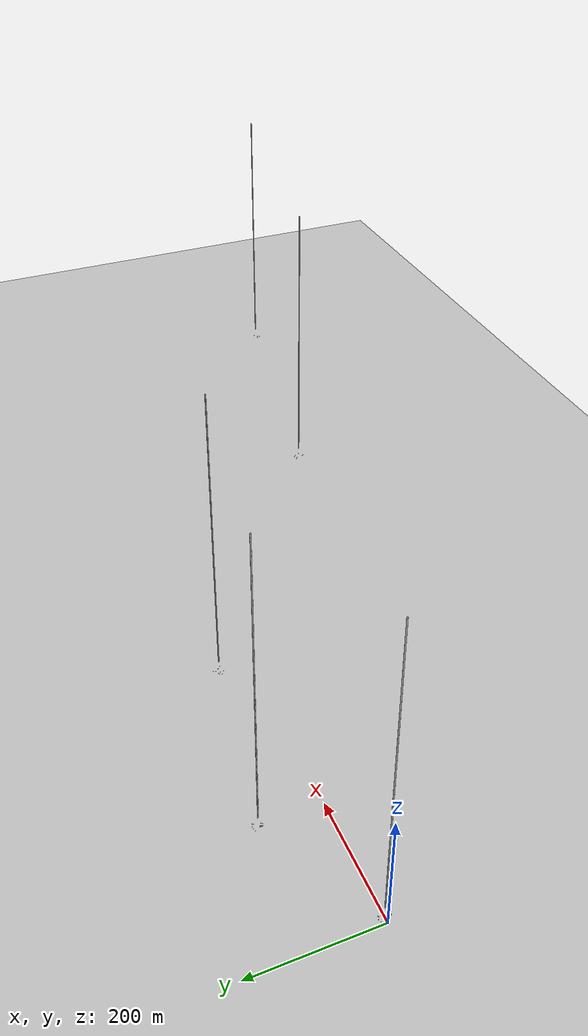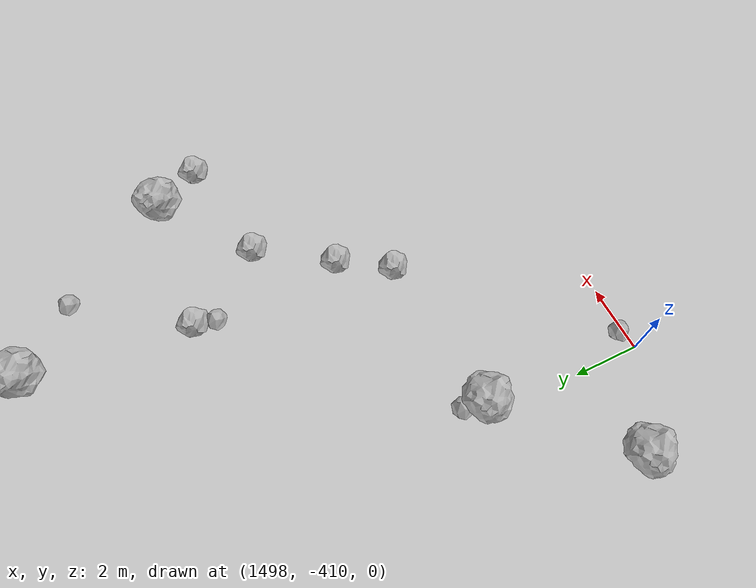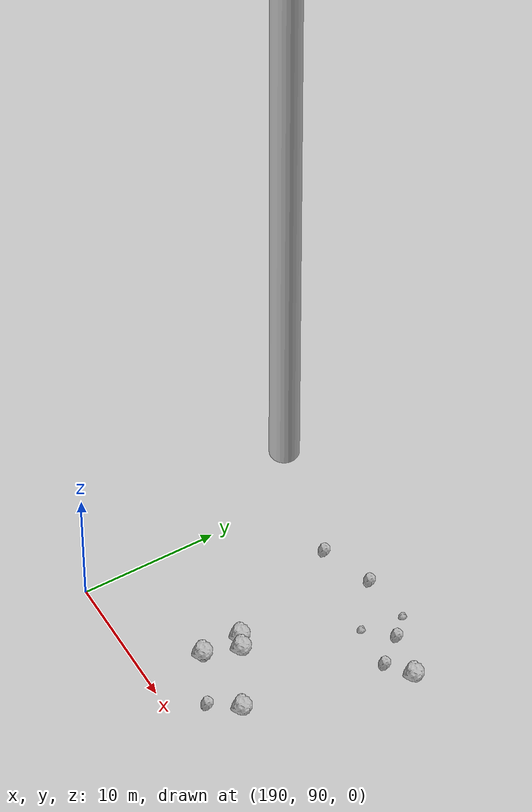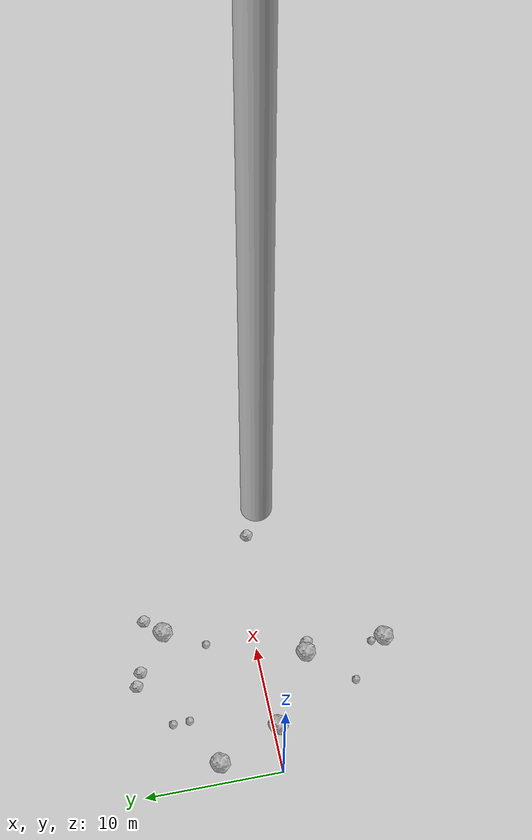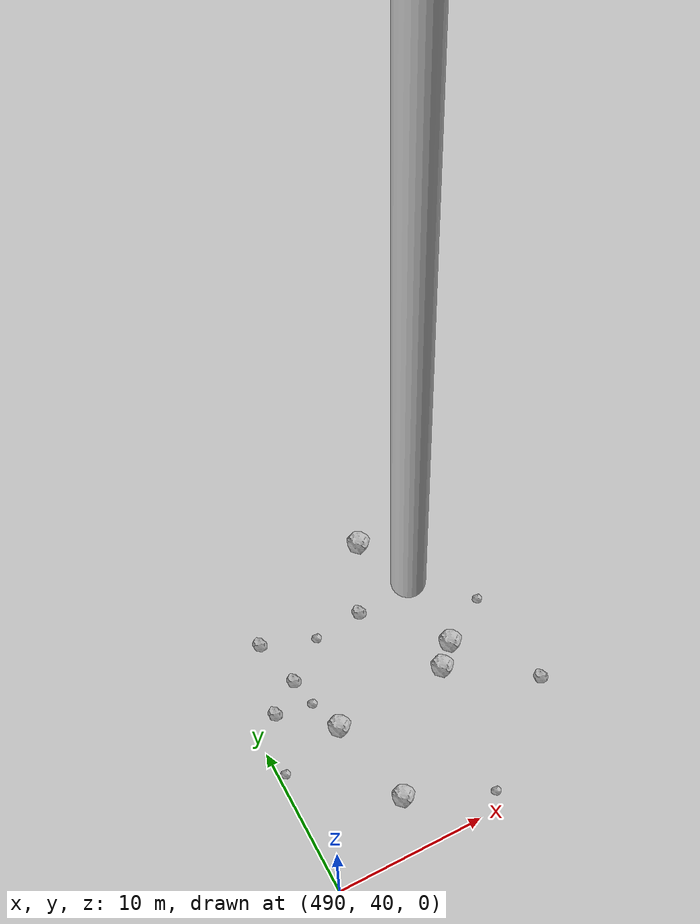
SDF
<?xml version="1.0" ?>
<sdf version="1.6">
  <world name="default">

    <include>
      <uri>model://custom_ground</uri>
    </include>

    <include>
      <uri>model://sun</uri>
    </include>

    <spherical_coordinates>
      <surface_model>EARTH_WGS84</surface_model>
      <latitude_deg>38.161479</latitude_deg>
      <longitude_deg>-122.454630</longitude_deg>
      <elevation>488.0</elevation>
      <heading_deg>90</heading_deg>
    </spherical_coordinates>

    <model name="rock1_0_0">
      <include>
        <uri>model://rock1</uri>
        <pose>12.582224413489527 6.631831437576466 0.5 0 0 0</pose>
      </include>
    </model>
    <model name="rock1_0_1">
      <include>
        <uri>model://rock1</uri>
        <pose>3.557448756831192 -0.2908031784061542 0.5 0 0 0</pose>
      </include>
    </model>
    <model name="rock1_0_2">
      <include>
        <uri>model://rock1</uri>
        <pose>8.898274807877101 -3.4960112588302428 0.5 0 0 0</pose>
      </include>
    </model>
    <model name="rock1_0_3">
      <include>
        <uri>model://rock1</uri>
        <pose>1.4691217928036093 4.355899784550063 0.5 0 0 0</pose>
      </include>
    </model>
    <model name="rock1_0_4">
      <include>
        <uri>model://rock1</uri>
        <pose>9.071037221916152 -9.471505252102952 0.5 0 0 0</pose>
      </include>
    </model>
    <model name="rock2_0_0">
      <include>
        <uri>model://rock2</uri>
        <pose>9.72652628888455 -3.7286553341679607 0.3 0 0 0</pose>
      </include>
    </model>
    <model name="rock2_0_1">
      <include>
        <uri>model://rock2</uri>
        <pose>8.599433305358854 9.242917827625885 0.3 0 0 0</pose>
      </include>
    </model>
    <model name="rock2_0_2">
      <include>
        <uri>model://rock2</uri>
        <pose>9.667864641921192 8.785490803290795 0.3 0 0 0</pose>
      </include>
    </model>
    <model name="rock2_0_3">
      <include>
        <uri>model://rock2</uri>
        <pose>13.80684304371017 7.876562991882114 0.3 0 0 0</pose>
      </include>
    </model>
    <model name="rock2_0_4">
      <include>
        <uri>model://rock2</uri>
        <pose>19.65813018475752 -1.1235590712246069 0.3 0 0 0</pose>
      </include>
    </model>
    <model name="rock3_0_0">
      <include>
        <uri>model://rock3</uri>
        <pose>8.911815016407846 -8.537455601026085 0.2 0 0 0</pose>
      </include>
    </model>
    <model name="rock3_0_1">
      <include>
        <uri>model://rock3</uri>
        <pose>5.135994218117599 7.101967131031131 0.2 0 0 0</pose>
      </include>
    </model>
    <model name="rock3_0_2">
      <include>
        <uri>model://rock3</uri>
        <pose>6.040533630499249 -6.686611478176667 0.2 0 0 0</pose>
      </include>
    </model>
    <model name="rock3_0_3">
      <include>
        <uri>model://rock3</uri>
        <pose>11.028570421657042 3.6067190401201916 0.2 0 0 0</pose>
      </include>
    </model>
    <model name="rock3_0_4">
      <include>
        <uri>model://rock3</uri>
        <pose>5.1654826179895075 5.885695562418755 0.2 0 0 0</pose>
      </include>
    </model>
    <model name="rock1_1_0">
      <include>
        <uri>model://rock1</uri>
        <pose>198.79739916296307 97.26790253660076 0.5 0 0 0</pose>
      </include>
    </model>
    <model name="rock1_1_1">
      <include>
        <uri>model://rock1</uri>
        <pose>204.13465152908674 94.36826019763107 0.5 0 0 0</pose>
      </include>
    </model>
    <model name="rock1_1_2">
      <include>
        <uri>model://rock1</uri>
        <pose>207.56587737096737 105.90449604744958 0.5 0 0 0</pose>
      </include>
    </model>
    <model name="rock1_1_3">
      <include>
        <uri>model://rock1</uri>
        <pose>199.74456365941307 96.82708468949474 0.5 0 0 0</pose>
      </include>
    </model>
    <model name="rock1_1_4">
      <include>
        <uri>model://rock1</uri>
        <pose>198.8207846648566 94.29790649864121 0.5 0 0 0</pose>
      </include>
    </model>
    <model name="rock2_1_0">
      <include>
        <uri>model://rock2</uri>
        <pose>204.12960838382625 106.6041434458746 0.3 0 0 0</pose>
      </include>
    </model>
    <model name="rock2_1_1">
      <include>
        <uri>model://rock2</uri>
        <pose>205.75281806372354 104.66117597388141 0.3 0 0 0</pose>
      </include>
    </model>
    <model name="rock2_1_2">
      <include>
        <uri>model://rock2</uri>
        <pose>195.24268104908913 106.04497934088528 0.3 0 0 0</pose>
      </include>
    </model>
    <model name="rock2_1_3">
      <include>
        <uri>model://rock2</uri>
        <pose>202.63286892165257 92.49091872805435 0.3 0 0 0</pose>
      </include>
    </model>
    <model name="rock2_1_4">
      <include>
        <uri>model://rock2</uri>
        <pose>199.08231539972002 107.42573202224382 0.3 0 0 0</pose>
      </include>
    </model>
    <model name="rock3_1_0">
      <include>
        <uri>model://rock3</uri>
        <pose>199.11057058784561 94.19954252035768 0.2 0 0 0</pose>
      </include>
    </model>
    <model name="rock3_1_1">
      <include>
        <uri>model://rock3</uri>
        <pose>198.74298246918187 107.60997051324165 0.2 0 0 0</pose>
      </include>
    </model>
    <model name="rock3_1_2">
      <include>
        <uri>model://rock3</uri>
        <pose>202.6576234093447 92.30702426938585 0.2 0 0 0</pose>
      </include>
    </model>
    <model name="rock3_1_3">
      <include>
        <uri>model://rock3</uri>
        <pose>202.40198172786685 104.75478768765247 0.2 0 0 0</pose>
      </include>
    </model>
    <model name="rock3_1_4">
      <include>
        <uri>model://rock3</uri>
        <pose>202.8242780463841 107.81933912338617 0.2 0 0 0</pose>
      </include>
    </model>
    <model name="rock1_2_0">
      <include>
        <uri>model://rock1</uri>
        <pose>501.75333637105985 59.808475066289034 0.5 0 0 0</pose>
      </include>
    </model>
    <model name="rock1_2_1">
      <include>
        <uri>model://rock1</uri>
        <pose>503.8477152314517 51.10370613998522 0.5 0 0 0</pose>
      </include>
    </model>
    <model name="rock1_2_2">
      <include>
        <uri>model://rock1</uri>
        <pose>496.3653433571418 43.48127891411215 0.5 0 0 0</pose>
      </include>
    </model>
    <model name="rock1_2_3">
      <include>
        <uri>model://rock1</uri>
        <pose>494.92023143094343 49.41958213073604 0.5 0 0 0</pose>
      </include>
    </model>
    <model name="rock1_2_4">
      <include>
        <uri>model://rock1</uri>
        <pose>502.59649345131373 49.857448196982 0.5 0 0 0</pose>
      </include>
    </model>
    <model name="rock2_2_0">
      <include>
        <uri>model://rock2</uri>
        <pose>491.673771582303 52.094903911017056 0.3 0 0 0</pose>
      </include>
    </model>
    <model name="rock2_2_1">
      <include>
        <uri>model://rock2</uri>
        <pose>499.5613550922591 55.62827889939845 0.3 0 0 0</pose>
      </include>
    </model>
    <model name="rock2_2_2">
      <include>
        <uri>model://rock2</uri>
        <pose>493.72903024846335 53.49332041699616 0.3 0 0 0</pose>
      </include>
    </model>
    <model name="rock2_2_3">
      <include>
        <uri>model://rock2</uri>
        <pose>507.82421582946694 46.35336805614883 0.3 0 0 0</pose>
      </include>
    </model>
    <model name="rock2_2_4">
      <include>
        <uri>model://rock2</uri>
        <pose>492.9097307465202 56.66929305582212 0.3 0 0 0</pose>
      </include>
    </model>
    <model name="rock3_2_0">
      <include>
        <uri>model://rock3</uri>
        <pose>490.4448159753273 48.240036201132526 0.2 0 0 0</pose>
      </include>
    </model>
    <model name="rock3_2_1">
      <include>
        <uri>model://rock3</uri>
        <pose>494.0846525801106 51.58047000544677 0.2 0 0 0</pose>
      </include>
    </model>
    <model name="rock3_2_2">
      <include>
        <uri>model://rock3</uri>
        <pose>506.7457036625094 52.861016810128035 0.2 0 0 0</pose>
      </include>
    </model>
    <model name="rock3_2_3">
      <include>
        <uri>model://rock3</uri>
        <pose>496.3341861114973 55.33493719971138 0.2 0 0 0</pose>
      </include>
    </model>
    <model name="rock3_2_4">
      <include>
        <uri>model://rock3</uri>
        <pose>501.6801611641777 41.06321324605506 0.2 0 0 0</pose>
      </include>
    </model>
    <model name="rock1_3_0">
      <include>
        <uri>model://rock1</uri>
        <pose>1000.167790440271 -309.44805370727715 0.5 0 0 0</pose>
      </include>
    </model>
    <model name="rock1_3_1">
      <include>
        <uri>model://rock1</uri>
        <pose>997.0458443452679 -295.4041144470045 0.5 0 0 0</pose>
      </include>
    </model>
    <model name="rock1_3_2">
      <include>
        <uri>model://rock1</uri>
        <pose>1007.4608234535589 -303.4123948199619 0.5 0 0 0</pose>
      </include>
    </model>
    <model name="rock1_3_3">
      <include>
        <uri>model://rock1</uri>
        <pose>994.5004360776718 -297.68877106964095 0.5 0 0 0</pose>
      </include>
    </model>
    <model name="rock1_3_4">
      <include>
        <uri>model://rock1</uri>
        <pose>998.2138098447911 -308.2273396098573 0.5 0 0 0</pose>
      </include>
    </model>
    <model name="rock2_3_0">
      <include>
        <uri>model://rock2</uri>
        <pose>1004.3233965297089 -294.25570509152203 0.3 0 0 0</pose>
      </include>
    </model>
    <model name="rock2_3_1">
      <include>
        <uri>model://rock2</uri>
        <pose>991.2900222774766 -299.60804632017505 0.3 0 0 0</pose>
      </include>
    </model>
    <model name="rock2_3_2">
      <include>
        <uri>model://rock2</uri>
        <pose>993.3486815204462 -292.6312524492279 0.3 0 0 0</pose>
      </include>
    </model>
    <model name="rock2_3_3">
      <include>
        <uri>model://rock2</uri>
        <pose>995.1339968774189 -297.28963225521545 0.3 0 0 0</pose>
      </include>
    </model>
    <model name="rock2_3_4">
      <include>
        <uri>model://rock2</uri>
        <pose>1001.0639760214639 -291.7360758108138 0.3 0 0 0</pose>
      </include>
    </model>
    <model name="rock3_3_0">
      <include>
        <uri>model://rock3</uri>
        <pose>1001.0978214653738 -295.93021906569595 0.2 0 0 0</pose>
      </include>
    </model>
    <model name="rock3_3_1">
      <include>
        <uri>model://rock3</uri>
        <pose>1009.6289972035636 -300.3146449753911 0.2 0 0 0</pose>
      </include>
    </model>
    <model name="rock3_3_2">
      <include>
        <uri>model://rock3</uri>
        <pose>1005.9271179146938 -296.88813694849864 0.2 0 0 0</pose>
      </include>
    </model>
    <model name="rock3_3_3">
      <include>
        <uri>model://rock3</uri>
        <pose>1007.0548549237631 -304.1937612382625 0.2 0 0 0</pose>
      </include>
    </model>
    <model name="rock3_3_4">
      <include>
        <uri>model://rock3</uri>
        <pose>1000.4437390393783 -294.63944333998825 0.2 0 0 0</pose>
      </include>
    </model>
    <model name="rock1_4_0">
      <include>
        <uri>model://rock1</uri>
        <pose>1495.3679963798745 -408.39864252697095 0.5 0 0 0</pose>
      </include>
    </model>
    <model name="rock1_4_1">
      <include>
        <uri>model://rock1</uri>
        <pose>1498.4518229559205 -405.22869954635223 0.5 0 0 0</pose>
      </include>
    </model>
    <model name="rock1_4_2">
      <include>
        <uri>model://rock1</uri>
        <pose>1504.6723655175508 -393.63841206534835 0.5 0 0 0</pose>
      </include>
    </model>
    <model name="rock1_4_3">
      <include>
        <uri>model://rock1</uri>
        <pose>1508.6542250092587 -398.8983843711113 0.5 0 0 0</pose>
      </include>
    </model>
    <model name="rock1_4_4">
      <include>
        <uri>model://rock1</uri>
        <pose>1492.9741417985294 -401.77470516107684 0.5 0 0 0</pose>
      </include>
    </model>
    <model name="rock2_4_0">
      <include>
        <uri>model://rock2</uri>
        <pose>1504.100808183644 -398.59913681333154 0.3 0 0 0</pose>
      </include>
    </model>
    <model name="rock2_4_1">
      <include>
        <uri>model://rock2</uri>
        <pose>1509.3549292294226 -400.3127999132133 0.3 0 0 0</pose>
      </include>
    </model>
    <model name="rock2_4_2">
      <include>
        <uri>model://rock2</uri>
        <pose>1505.7491938517496 -401.0405470283067 0.3 0 0 0</pose>
      </include>
    </model>
    <model name="rock2_4_3">
      <include>
        <uri>model://rock2</uri>
        <pose>1503.3176724289824 -404.7326676894289 0.3 0 0 0</pose>
      </include>
    </model>
    <model name="rock2_4_4">
      <include>
        <uri>model://rock2</uri>
        <pose>1504.269627257081 -403.2272109557859 0.3 0 0 0</pose>
      </include>
    </model>
    <model name="rock3_4_0">
      <include>
        <uri>model://rock3</uri>
        <pose>1503.9259612392723 -399.269685272213 0.2 0 0 0</pose>
      </include>
    </model>
    <model name="rock3_4_1">
      <include>
        <uri>model://rock3</uri>
        <pose>1496.3893047892766 -395.1188176517238 0.2 0 0 0</pose>
      </include>
    </model>
    <model name="rock3_4_2">
      <include>
        <uri>model://rock3</uri>
        <pose>1498.499611656527 -404.5564704601797 0.2 0 0 0</pose>
      </include>
    </model>
    <model name="rock3_4_3">
      <include>
        <uri>model://rock3</uri>
        <pose>1506.2465768613295 -395.425626178024 0.2 0 0 0</pose>
      </include>
    </model>
    <model name="rock3_4_4">
      <include>
        <uri>model://rock3</uri>
        <pose>1498.5833907346644 -409.8197808467887 0.2 0 0 0</pose>
      </include>
    </model>

    <model name="cylinder_1">
      <static>true</static>
      <link name="link">
        <visual name="visual">
          <geometry>
            <cylinder>
              <radius>1</radius>
              <length>500</length>
            </cylinder>
          </geometry>
        </visual>
      </link>
      <pose>10 0 270 0 0 0</pose>
    </model>

    <model name="cylinder_2">
      <static>true</static>
      <link name="link">
        <visual name="visual">
          <geometry>
            <cylinder>
              <radius>1</radius>
              <length>500</length>
            </cylinder>
          </geometry>
        </visual>
      </link>
      <pose>200 100 270 0 0 0</pose>
    </model>

    <model name="cylinder_3">
      <static>true</static>
      <link name="link">
        <visual name="visual">
          <geometry>
            <cylinder>
              <radius>1</radius>
              <length>500</length>
            </cylinder>
          </geometry>
        </visual>
      </link>
      <pose>500 50 270 0 0 0</pose>
    </model>

    <model name="cylinder_4">
      <static>true</static>
      <link name="link">
        <visual name="visual">
          <geometry>
            <cylinder>
              <radius>1</radius>
              <length>500</length>
            </cylinder>
          </geometry>
        </visual>
      </link>
      <pose>1000 -300 270 0 0 0</pose>
    </model>

    <model name="cylinder_5">
      <static>true</static>
      <link name="link">
        <visual name="visual">
          <geometry>
            <cylinder>
              <radius>1</radius>
              <length>500</length>
            </cylinder>
          </geometry>
        </visual>
      </link>
      <pose>1500 -400 270 0 0 0</pose>
    </model>

  </world>
</sdf>

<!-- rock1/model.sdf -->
<sdf version="1.6">
  <model name="rock1">
    <static>true</static> <!-- Set to true if the model should not move -->
    <pose>0 0 0 0 0 0</pose>

    <!--z offset is 0.5 for full scale-->

    <link name="link">
      <collision name="rock1_collision">
        <geometry>
          <mesh>
            <uri>model://meshes/rock1.dae</uri>
          </mesh>
        </geometry>
      </collision>
      <visual name="rock1_visual">
        <geometry>
          <mesh>
            <uri>model://meshes/rock1.dae</uri>
          </mesh>
        </geometry>
        <material>
          <script>
            <uri>model://materials/scripts/sand_pebbles.material</uri>
            <name>custom_ground/Image</name>
          </script>
        </material>
      </visual>
    </link>
  </model>
</sdf>

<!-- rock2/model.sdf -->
<sdf version="1.6">
  <model name="rock2">
    <static>true</static> <!-- Set to true if the model should not move -->
    <pose>0 0 0 0 0 0</pose>

    <!--z offset is 0.3 for full scale-->

    <link name="link">
      <collision name="rock2_collision">
        <geometry>
          <mesh>
            <uri>model://meshes/rock2.dae</uri>
          </mesh>
        </geometry>
      </collision>
      <visual name="rock2_visual">
        <geometry>
          <mesh>
            <uri>model://meshes/rock2.dae</uri>
          </mesh>
        </geometry>
        <material>
          <script>
            <uri>model://materials/scripts/sand_pebbles.material</uri>
            <name>custom_ground/Image</name>
          </script>
        </material>
      </visual>
    </link>
  </model>
</sdf>

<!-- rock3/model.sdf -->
<sdf version="1.6">
  <model name="rock3">
    <static>true</static> <!-- Set to true if the model should not move -->
    <pose>0 0 0 0 0 0</pose>

    <!--z offset is 0.2 for full scale-->

    <link name="link">
      <collision name="rock3_collision">
        <geometry>
          <mesh>
            <uri>model://meshes/rock3.dae</uri>
          </mesh>
        </geometry>
      </collision>
      <visual name="rock3_visual">
        <geometry>
          <mesh>
            <uri>model://meshes/rock3.dae</uri>
          </mesh>
        </geometry>
        <material>
          <script>
            <uri>model://materials/scripts/sand_pebbles.material</uri>
            <name>custom_ground/Image</name>
          </script>
        </material>
      </visual>
    </link>
  </model>
</sdf>

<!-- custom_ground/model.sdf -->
<sdf version="1.6">
  <model name="custom_ground">
    <static>true</static> <!-- Ground is static and immovable -->
    <link name="ground_link">
      <pose>240 0 0 0 0 0</pose> <!-- Position and orientation relative to the world -->
      <!-- Visual Representation -->
      <visual name="ground_visual">
        <geometry>
          <plane>
            <normal>0 0 1</normal> <!-- Upward facing plane -->
            <size>500 500</size> <!-- Size of the plane -->
          </plane>
        </geometry>
        <material>
          <script>
            <uri>model://materials/scripts/sand_pebbles.material</uri>
            <name>custom_ground/Image</name>
          </script>
        </material>
      </visual>

      <!-- Collision Representation -->
      <collision name="ground_collision">
        <geometry>
          <plane>
            <normal>0 0 1</normal>
            <size>100 100</size>
          </plane>
        </geometry>
      </collision>

    </link>
  </model>
</sdf>
